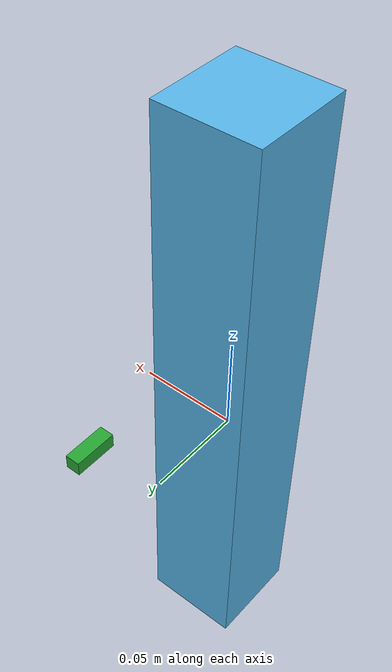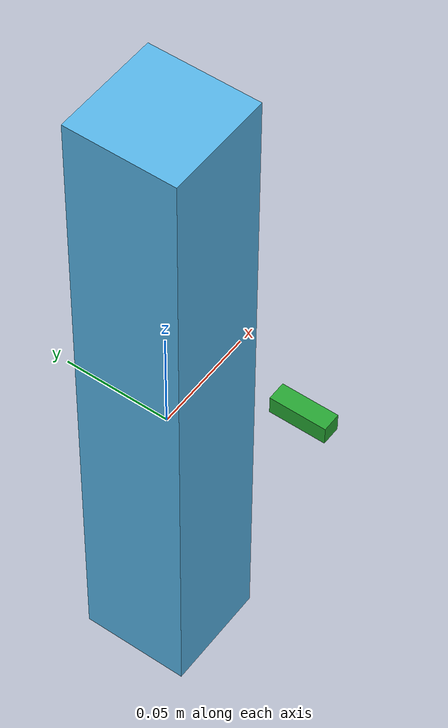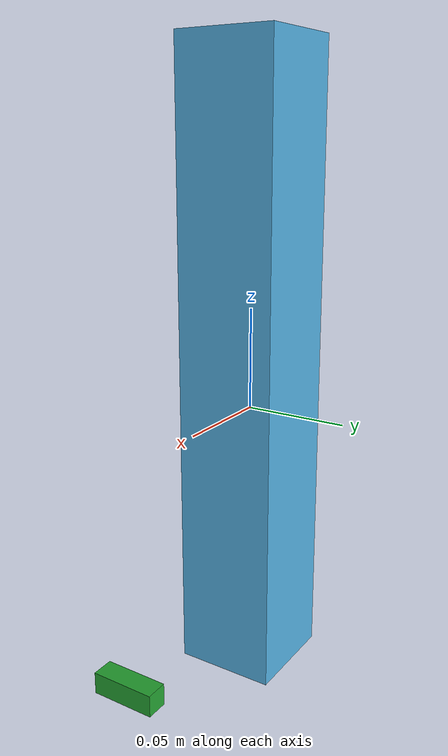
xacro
<?xml version="1.0"?>
<robot name="ir_sensor2" xmlns:xacro="http://www.ros.org/wiki/xacro">

  <!-- Included URDF/XACRO Files -->
  <xacro:include filename="$(find sim_environment)/urdf/ir_sensor_macro.xacro" />

  <!-- PROPERTY LIST -->
  <!--All units in m-kg-s-radians unit system -->
  <property name="M_PI" value="3.1415926535897931" />

  <!-- Main Body-base -->
  <property name="base_x_size" value="0.05" />
  <property name="base_y_size" value="0.05" />
  <property name="base_z_size" value="0.31" />
  <property name="base_mass" value="1000" /> <!-- in kg-->

  <!--Inertial macros for the box and cylinder. Units are kg*m^2-->
  <macro name="box_inertia" params="m x y z">
    <inertia  ixx="${m*(y*y+z*z)/12}" ixy = "0" ixz = "0"
              iyy="${m*(x*x+z*z)/12}" iyz = "0"
              izz="${m*(x*x+z*z)/12}" />
  </macro>

  <macro name="cylinder_inertia" params="m r h">
    <inertia  ixx="${m*(3*r*r+h*h)/12}" ixy = "0" ixz = "0"
              iyy="${m*(3*r*r+h*h)/12}" iyz = "0"
              izz="${m*r*r/2}" />
  </macro>
  <!-- BASE-FOOTPRINT -->
  <!-- base_footprint is a fictitious link(frame) that is on the ground right below base_link origin -->
  <link name="base_footprint">
    <visual>
        <origin xyz="0 0 0" rpy="0 0 0" />
        <geometry>
            <box size="0.001 0.001 0.001" />
        </geometry>
    </visual>
    <collision>
      <origin xyz="0 0 0" rpy="0 0 0 " />
      <geometry>
        <box size="${base_x_size} ${base_y_size} ${base_z_size}"/>
      </geometry>
    </collision>
  </link>

  <gazebo reference="base_footprint">
    <turnGravityOff>false</turnGravityOff>
    <static>true</static>
  </gazebo>

  <!-- BASE-LINK -->
  <!--Actual body/chassis of the robot-->
  <link name="base_link">
    <inertial>
      <mass value="${base_mass}" />
      <origin xyz="0 0 0" />
      <!--The 3x3 rotational inertia matrix. -->
      <box_inertia  m="${base_mass}" x="${base_x_size}" y="${base_y_size}" z="${base_z_size}"/>
    </inertial>
    <visual>
      <origin xyz="0 0 0" rpy="0 0 ${-M_PI/2}" />
      <geometry>
        <box size="${base_x_size} ${base_y_size} ${base_z_size}"/>
      </geometry>
    </visual>
  </link>
  <gazebo reference="base_link">
    <turnGravityOff>false</turnGravityOff>
  </gazebo>

  <joint name="base_footprint_joint" type="fixed">
    <origin xyz="0 0 0.02" rpy="0 0 0" />
    <parent link="base_footprint"/>
    <child link="base_link" />
  </joint>

  <!-- camera -->
  <ir_sensor_macro parent="base_link" prefix="ir_sensor2" ir_n="2" xyz="0.1 0.0 -0.12"/>

  <gazebo>
    <plugin name="gazebo_ros_control" filename="libgazebo_ros_control.so" />
  </gazebo>

</robot>

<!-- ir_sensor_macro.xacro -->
<robot name="surveillance_camera" xmlns:xacro="http://ros.org/wiki/xacro">
  <xacro:macro name="ir_sensor_macro" params="parent prefix xyz">
    <joint name="${prefix}_joint" type="fixed">
      <parent link="${parent}"/>
      <child  link="${prefix}_link"/>
      <origin xyz="${xyz}" rpy="${radians(-90)} 0 0"/>
    </joint>
    <link name="${prefix}_link">
      <visual>
        <origin xyz="0 0 0" rpy="0 0 0" />
        <geometry>
          <box size="0.01 0.01 0.03" />
        </geometry>
        <material name="Green" />
      </visual>
    </link>
    <gazebo reference="${prefix}_link">
      <sensor type="ray" name="TeraRanger">
        <pose>0 0 0 0 0 0</pose>
        <visualize>true</visualize>
        <update_rate>50</update_rate>
        <ray>
          <scan>
              <horizontal>
                <samples>1</samples>
                <resolution>1</resolution>
                <min_angle>-0.014835</min_angle>
                <max_angle>0.014835</max_angle>
              </horizontal>
              <vertical>
                <samples>1</samples>
                <resolution>1</resolution>
                <min_angle>-0.014835</min_angle>
                <max_angle>0.014835</max_angle>
              </vertical>
          </scan>
          <range>
              <min>0.01</min>
              <max>2</max>
              <resolution>0.02</resolution>
          </range>
        </ray>
        <plugin filename="libgazebo_ros_range.so" name="gazebo_ros_range">
          <gaussianNoise>0.005</gaussianNoise>
          <alwaysOn>true</alwaysOn>
          <updateRate>50</updateRate>
          <topicName>ir_sensor</topicName>
          <frameName>${prefix}_link</frameName>
          <radiation>INFRARED</radiation>
          <fov>0.02967</fov>
        </plugin>
    </sensor>
   </gazebo>
  </xacro:macro>
</robot>
